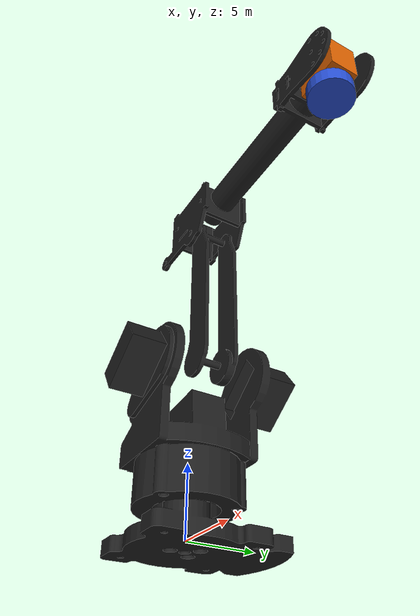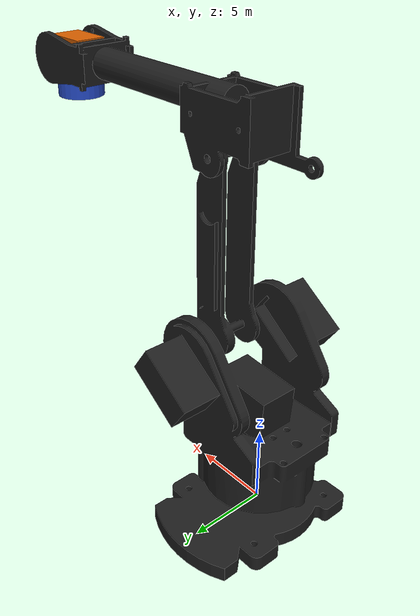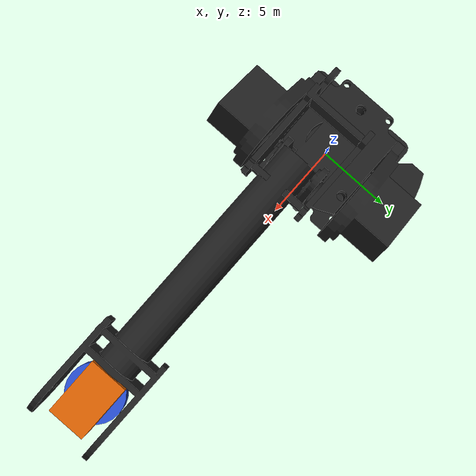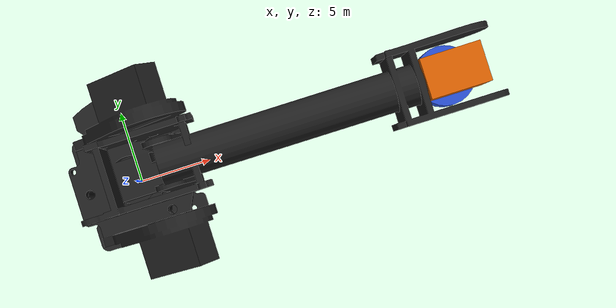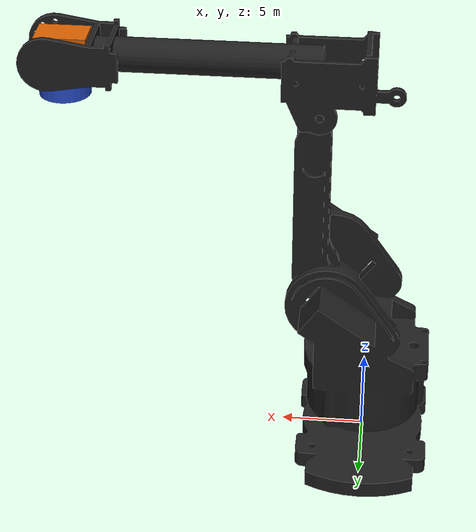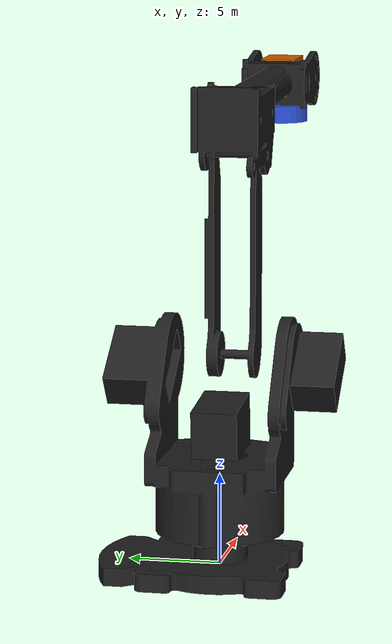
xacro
<?xml version="1.0"?>

<!--INCLUDES-->
<robot name="myrobot" xmlns:xacro="http://www.ros.org/wiki/xacro">

<xacro:include filename="$(find sainsmart_robot_description_pkg)/urdf/links_joints.xacro" />

<!--FIN DE INCLUDES-->

<!--Link de la base del robot-->

       <m_link_mesh name="base_link"
              origin_rpy="0 0 0" origin_xyz="0 0 0"
              mass="633"
              ixx="0" ixy="0" ixz="0"
              iyy="0" iyz="0"
              izz="9.655"
              meshfile="package://sainsmart_robot_description_pkg/meshes/baserobot.dae"
              meshscale="0.1 0.1 0.1" />

<!--Articulacion que une la base con el link1-->

        <m_joint name="base_link__link01" type="revolute"
           axis_xyz="0 0 1"
           origin_rpy="0 0 0" origin_xyz="0 0 0"
           parent="base_link" child="link_01"
           limit_e="1000" limit_l="-1.57" limit_u="1.57" limit_v="0.5" />

<!--Transmision asociada a la articulacion base_link_link01-->
	<transmission name="trans_base_link_link01">
          <type>transmission_interface/SimpleTransmission</type>
      	  <joint name="base_link__link01">
             <hardwareInterface>hardware_interface/PositionJointInterface</hardwareInterface>
      	  </joint>
          <actuator name="motor_base_link_link01">
	          <hardwareInterface>hardware_interface/PositionJointInterface</hardwareInterface>
	          <mechanicalReduction>1</mechanicalReduction>
          </actuator>
	</transmission>

<!--Link 01-->
   	<m_link_mesh name="link_01"
              origin_rpy="0 0 0" origin_xyz="0 0 6"
              mass="157.633"
              ixx="13.235" ixy="0" ixz="0"
              iyy="13.235" iyz="0"
              izz="9.655"
              meshfile="package://sainsmart_robot_description_pkg/meshes/pieza1.dae"
              meshscale="0.1 0.1 0.1" />

<!--Articulacion que une link01 con el link02-->
	<m_joint name="link01__link02" type="revolute"
		 axis_xyz="0 1 0"
		 origin_rpy="0 1.31 0" origin_xyz="2.9 0 11"
		 parent="link_01" child="link_02"
		 limit_e="1000" limit_l="-1.3" limit_u="1.3" limit_v="0.5" />

<!--Transmision asociada a la articulacion link01__link02-->
	<transmission name="trans_base_link01_link02">
          <type>transmission_interface/SimpleTransmission</type>
      	  <joint name="link01__link02">
             <hardwareInterface>hardware_interface/PositionJointInterface</hardwareInterface>
      	  </joint>
      	  <actuator name="motor_base_link01_link02">
	           <hardwareInterface>hardware_interface/PositionJointInterface</hardwareInterface>
	           <mechanicalReduction>1</mechanicalReduction>
          </actuator>
	</transmission>

<!--link02-->
	<m_link_mesh name="link_02"
              origin_rpy="0 0 0" origin_xyz="0 0 0"
              mass="157.633"
              ixx="13.235" ixy="0" ixz="0"
              iyy="13.235" iyz="0"
              izz="9.655"
              meshfile="package://sainsmart_robot_description_pkg/meshes/pieza3.dae"
              meshscale="0.1 0.1 0.1" />

<!--Articulacion que une link02 con link03-->
	<m_joint name="link01__link05" type="revolute"
		 axis_xyz="0 1 0"
		 origin_rpy="0 -1.31 0" origin_xyz="-10.6 -0.3 3"
		 parent="link_02" child="link_05"
		 limit_e="1000" limit_l="-1.22" limit_u="1.3" limit_v="0.5" />

<!--Transmision asociada a la articulacion link01__link05-->
	<transmission name="trans_base_link01_link05">
          <type>transmission_interface/SimpleTransmission</type>
      	  <joint name="link01__link05">
             <hardwareInterface>hardware_interface/PositionJointInterface</hardwareInterface>
      	  </joint>
          <actuator name="motor_base_link01_link05">
	          <hardwareInterface>hardware_interface/PositionJointInterface</hardwareInterface>
	          <mechanicalReduction>1</mechanicalReduction>
          </actuator>
	</transmission>

<!--link05-->
	<m_link_mesh name="link_05"
              origin_rpy="0 0 0" origin_xyz="0 0 0"
              mass="157.633"
              ixx="13.235" ixy="0" ixz="0"
              iyy="13.235" iyz="0"
              izz="9.655"
              meshfile="package://sainsmart_robot_description_pkg/meshes/pieza6.dae"
              meshscale="0.1 0.1 0.1" />

<!--articulacion link05__link06-->
	<m_joint name="link05__link06" type="revolute"
		 axis_xyz="1 0 0"
		 origin_rpy="0 0 0" origin_xyz="0 0 2.6"
		 parent="link_05" child="link_06"
		 limit_e="1000" limit_l="-1.57" limit_u="1.57" limit_v="0.5" />

<!--Transmision asociada a la articulacion link05__link06-->
	<transmission name="trans_base_link05_link06">
          <type>transmission_interface/SimpleTransmission</type>
      	  <joint name="link05__link06">
             <hardwareInterface>hardware_interface/PositionJointInterface</hardwareInterface>
      	  </joint>
          <actuator name="motor_base_link05_link06">
	           <hardwareInterface>hardware_interface/PositionJointInterface</hardwareInterface>
	           <mechanicalReduction>1</mechanicalReduction>
          </actuator>
	</transmission>

<!--link06-->
	<m_link_mesh name="link_06"
              origin_rpy="0 0 3.14" origin_xyz="0 0 0"
              mass="157.633"
              ixx="13.235" ixy="0" ixz="0"
              iyy="13.235" iyz="0"
              izz="9.655"
              meshfile="package://sainsmart_robot_description_pkg/meshes/pieza6buena.dae"
              meshscale="0.1 0.1 0.1" />

<!--joint_link06_wrist1-->
			<m_joint name="link06__wrist1" type="revolute"
			 axis_xyz="0 1 0"
			 origin_rpy="0 0 0" origin_xyz="13.3 0 0"
			 parent="link_06" child="wrist1"
			 limit_e="1000" limit_l="-1.57" limit_u="1.57" limit_v="0.5" />

	<!--Transmision asociada a la articulacion link06__wrist1-->
		<transmission name="trans_base_link06_wrist1">
		        <type>transmission_interface/SimpleTransmission</type>
		    	  <joint name="link06__wrist1">
		           <hardwareInterface>hardware_interface/PositionJointInterface</hardwareInterface>
		    	  </joint>
		        <actuator name="motor_base_link06_wrist1">
			         <hardwareInterface>hardware_interface/PositionJointInterface</hardwareInterface>
			         <mechanicalReduction>1</mechanicalReduction>
		        </actuator>
		</transmission>

	<!--wrist1-->
		  <link name="wrist1">
		  <inertial>
		      <mass value="50" />
		      <origin rpy="0 0 0" xyz="0 0 0" />
		      <inertia ixx="10" ixy="0" ixz="0" iyy="10" iyz="0" izz="9" />
		    </inertial>

		  <visual>
		    <origin rpy="0 0 0" xyz="1.5 0 0" />
		    <geometry>
		      <box size="3 2 2.5" />
		    </geometry>
		  </visual>

		  <collision>
		        <origin rpy="0 0 0" xyz="1.5 0 0"/>
		        <geometry>
		            <box size="3 2 2.5" />
		        </geometry>
		  </collision>

		  </link>

	<!--joint_wrist1_link-->
	<m_joint name="joint_wrist1__wrist2" type="revolute"
			 axis_xyz="0 0 1"
			 origin_rpy="0 0 0" origin_xyz="1.5 0 -2"
			 parent="wrist1" child="wrist2"
			 limit_e="1000" limit_l="-1.57" limit_u="1.57" limit_v="0.5" />

	<!--Transmision asociada a la articulacion link06__wrist1-->
		<transmission name="trans_base_wrist1_wrist2">
		        <type>transmission_interface/SimpleTransmission</type>
		    	  <joint name="joint_wrist1__wrist2">
		           <hardwareInterface>hardware_interface/PositionJointInterface</hardwareInterface>
		    	  </joint>
		        <actuator name="motor_base_wrist1_wrist2">
			         <hardwareInterface>hardware_interface/PositionJointInterface</hardwareInterface>
			         <mechanicalReduction>1</mechanicalReduction>
		        </actuator>
		</transmission>

	<!--wrist2-->

	<link name="wrist2">
		    <inertial>
		      <mass value="30" />
		      <origin rpy="0 0 0" xyz="0 0 0" />
		      <inertia ixx="10" ixy="0" ixz="0" iyy="10" iyz="0" izz="9" />
		    </inertial>

		    <visual>
						<origin rpy="0 0 0" xyz="0 0 0"/>
		        <geometry>
		            <cylinder radius="1.5" length="1"/>
		        </geometry>
		        <material name="blue"/>
		    </visual>

		    <collision>
		        <origin rpy="0 0 0" xyz="0 0 0"/>
		        <geometry>
		            <cylinder radius="1.5" length="1"/>
		        </geometry>
		    </collision>
		    </link>

<!--Plugin necesario para que se inicie gazebo-->

	     <gazebo>
              <static>false</static>
	            <plugin name="gazebo_ros_control" filename="libgazebo_ros_control.so">
                 <robotNamespace>/myrobot</robotNamespace>
                 <robotSimType>gazebo_ros_control/DefaultRobotHWSim</robotSimType>
                 <legacyModeNS>true</legacyModeNS>
              </plugin>
        </gazebo>

</robot>

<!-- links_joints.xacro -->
<robot xmlns:xacro="http://www.ros.org/wiki/xacro">

<!--MACRO DE ARTICULACIONES-->

  <xacro:macro name="m_joint" params="name type axis_xyz origin_rpy origin_xyz parent child limit_e limit_l limit_u limit_v">
    <joint name="${name}" type="${type}">
      <axis xyz="${axis_xyz}" />
      <limit effort="${limit_e}" lower="${limit_l}" upper="${limit_u}" velocity="${limit_v}" />
      <origin rpy="${origin_rpy}" xyz="${origin_xyz}" />
      <parent link="${parent}" />
      <child link="${child}" />
    </joint>
    <transmission name="trans_${name}">
      <type>transmission_interface/SimpleTransmission</type>
      <joint name="${name}">
        <hardwareInterface>hardware_interface/EffortJointInterface</hardwareInterface>
      </joint>
      <actuator name="motor_${name}">
        <hardwareInterface>hardware_interface/EffortJointInterface</hardwareInterface>
        <mechanicalReduction>1</mechanicalReduction>
      </actuator>
    </transmission>
  </xacro:macro>

<!--MACRO DE LOS BRAZOS DEL ROBOT BASADOS EN UN ARCHIVO MESH FILE CREADO CON AUTOCAD Y BLENDER-->

  <xacro:macro name="m_link_mesh" params="name origin_xyz origin_rpy meshfile meshscale mass ixx ixy ixz iyy iyz izz">
    <link name="${name}">
      <inertial>
        <mass value="${mass}" />
        <origin rpy="${origin_rpy}" xyz="${origin_xyz}" />
        <inertia ixx="${ixx}" ixy="${ixy}" ixz="${ixz}" iyy="${iyy}" iyz="${iyz}" izz="${izz}" />
      </inertial>
      <collision>
        <origin rpy="${origin_rpy}" xyz="${origin_xyz}" />
        <geometry>
          <mesh filename="${meshfile}" scale="${meshscale}"/>
        </geometry>
      </collision>
      <visual>
        <origin rpy="${origin_rpy}" xyz="${origin_xyz}" />
        <geometry>
          <mesh filename="${meshfile}" scale="${meshscale}"/>
        </geometry>
        <material name="light_black"/>
      </visual>
    </link>
  </xacro:macro>

<!--MACRO DE RECTANGULO QUE UTILIZAREMOS PARA EL WRIST1-->

   <xacro:macro name="m_link_box" params="name origin_xyz origin_rpy size mass ixx ixy ixz iyy iyz izz">
    <link name="${name}">
    <inertial>
        <mass value="${mass}" />
        <origin rpy="${origin_rpy}" xyz="${origin_xyz}" />
        <inertia ixx="${ixx}" ixy="${ixy}" ixz="${ixz}" iyy="${iyy}" iyz="${iyz}" izz="${izz}" />
      </inertial>

    <visual>
      <origin rpy="${origin_rpy}" xyz="${origin_xyz}" />
      <geometry>
        <box size="${size}" />
      </geometry>
    </visual>

    <collision>
          <origin rpy="${origin_rpy}" xyz="${origin_xyz}"/>
          <geometry>
              <box size="${size}" />
          </geometry>
    </collision>

    </link>
  </xacro:macro>

<!--MACRO DE CILINDRO QUE UTILIZAREMOS PARA EL WRIST2-->

   <xacro:macro name="m_cylinder" params="name width bodylen mass origin_rpy origin_xyz ixx ixy ixz iyy iyz izz">
      <link name="${name}">
      <inertial>
        <mass value="${mass}" />
        <origin rpy="${origin_rpy}" xyz="${origin_xyz}" />
        <inertia ixx="${ixx}" ixy="${ixy}" ixz="${ixz}" iyy="${iyy}" iyz="${iyz}" izz="${izz}" />
      </inertial>

      <visual>
					<origin rpy="${origin_rpy}" xyz="${origin_xyz}"/>
          <geometry>
              <cylinder radius="${width}" length="${bodylen}"/>
          </geometry>
          <material name="blue"/>
      </visual>

      <collision>
          <origin rpy="${origin_rpy}" xyz="${origin_xyz}"/>
          <geometry>
              <cylinder radius="${width}" length="${bodylen}"/>
          </geometry>
      </collision>
      </link>
   </xacro:macro>
</robot>
